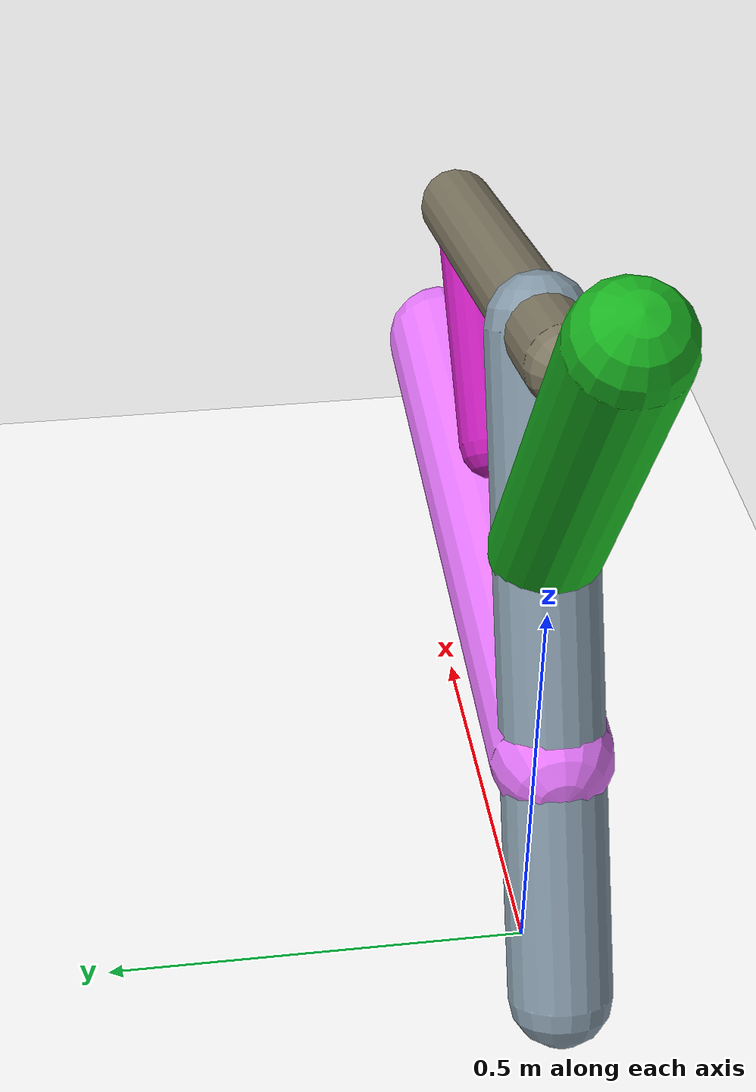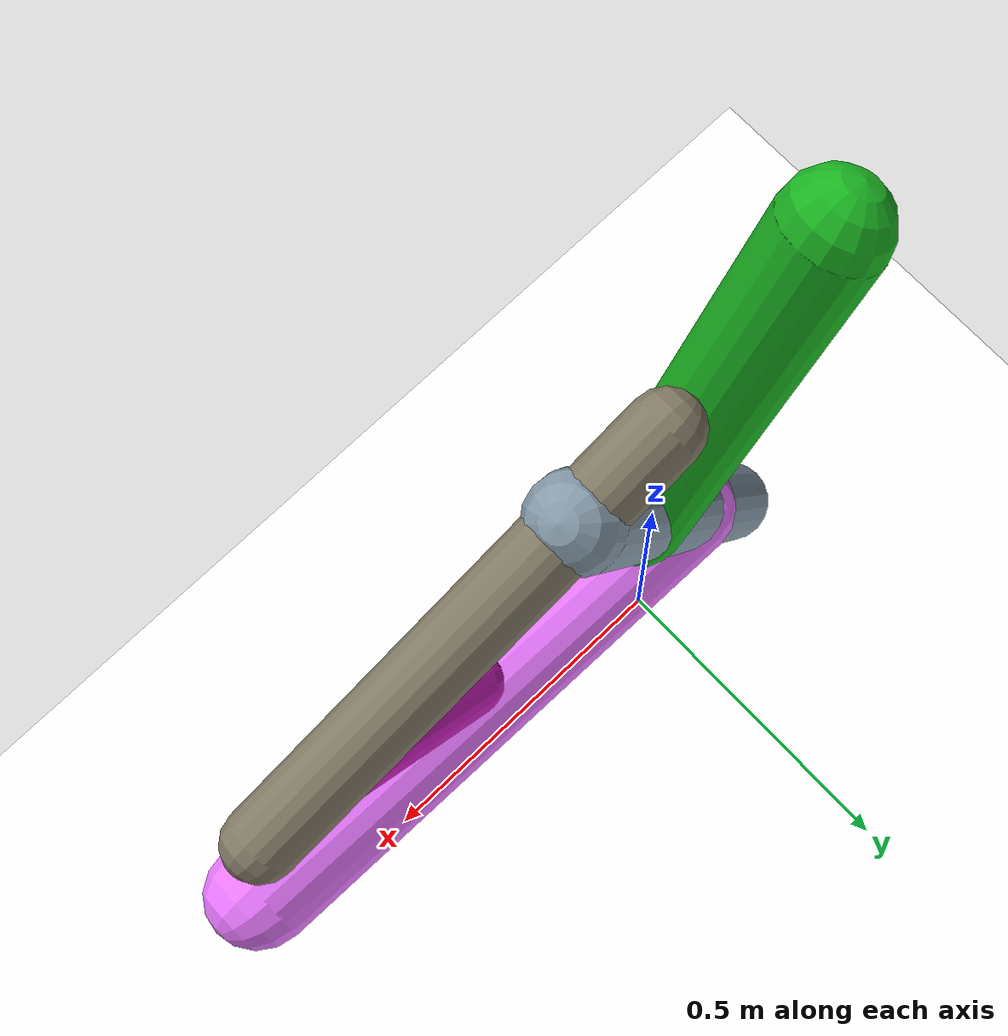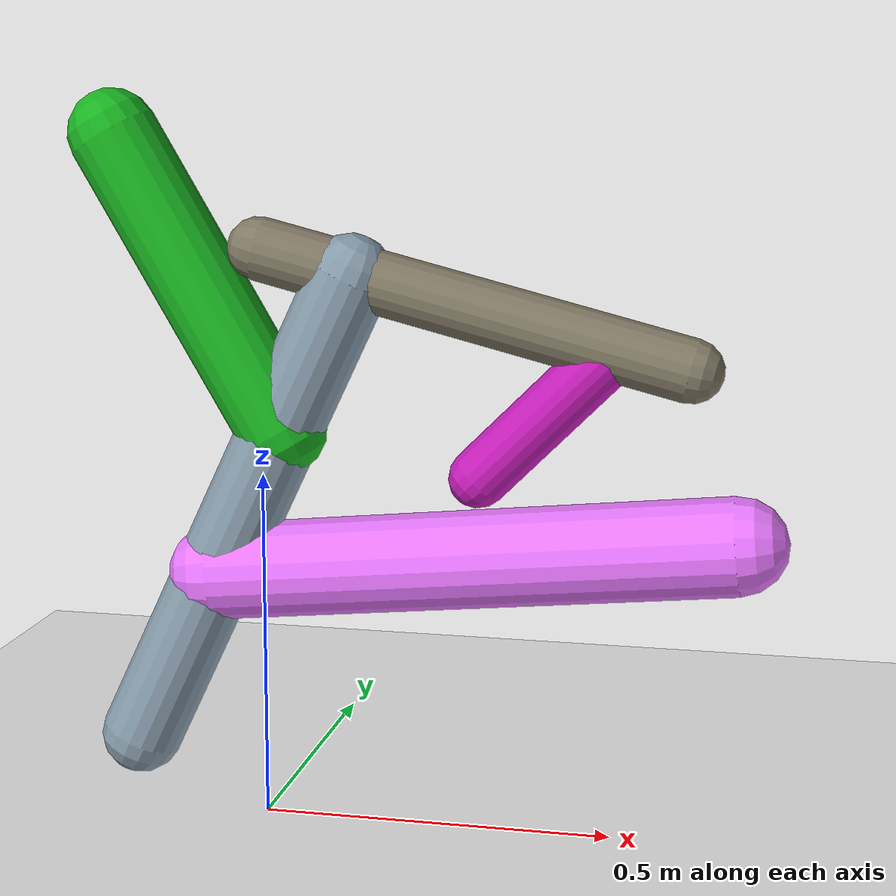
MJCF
<mujoco model="morphology">
  <option timestep="0.01"/>
  <default>
    <default class="/"/>
  </default>
  <asset>
    <texture name="texplane" type="2d" builtin="checker" rgb1="0.1 0.2 0.3" rgb2="0.2 0.3 0.4" width="300" height="300"/>
    <material name="MatPlane" class="/" texture="texplane" texrepeat="20 20" specular="1" shininess="1" reflectance="0.5"/>
  </asset>
  <worldbody>
    <light name="//unnamed_light_0" class="/" directional="true" pos="0 0 1.5" dir="0 0 -1.3" cutoff="1e+02" exponent="1" diffuse="1 1 1" specular="0.1 0.1 0.1"/>
    <geom name="ground" class="/" type="plane" size="15 15 0.5" material="MatPlane" rgba="1 1 1 1"/>
    <body name="body" pos="0 0 0.82">
      <geom name="geom0" class="/" type="capsule" contype="1" conaffinity="1" condim="3" size="0.045" rgba="0.5 0.47 0.39 1" friction="0.4 0.1 0.1" fromto="0 0 0 0.6 0 -0.15"/>
      <body name="body1" pos="0.49 0 -0.13">
        <geom name="geom1" class="/" type="capsule" contype="1" conaffinity="1" condim="3" size="0.042" rgba="0.77 0.11 0.72 1" friction="0.4 0.1 0.1" fromto="0 0 0 -0.18 0 -0.18"/>
        <joint name="joint1" class="/" type="hinge" axis="0 1 0" limited="true" stiffness="20" range="-55 55" armature="0.1" damping="2"/>
      </body>
      <body name="body2" pos="0.13 0 -0.034">
        <geom name="geom2" class="/" type="capsule" contype="1" conaffinity="1" condim="3" size="0.059" rgba="0.52 0.6 0.66 1" friction="0.4 0.1 0.1" fromto="0 0 0 -0.32 0 -0.68"/>
        <body name="body3" pos="-0.2 0 -0.43">
          <geom name="geom3" class="/" type="capsule" contype="1" conaffinity="1" condim="3" size="0.069" rgba="0.91 0.47 1 1" friction="0.4 0.1 0.1" fromto="0 0 0 0.74 0 0.076"/>
          <joint name="joint3" class="/" type="hinge" axis="0 1 0" limited="true" stiffness="20" range="-45 45" armature="0.1" damping="2"/>
        </body>
        <body name="body4" pos="-0.1 0 -0.22">
          <geom name="geom4" class="/" type="capsule" contype="1" conaffinity="1" condim="3" size="0.063" rgba="0.1 0.7 0.13 1" friction="0.4 0.1 0.1" fromto="0 0 0 -0.24 0 0.41"/>
          <joint name="joint4" class="/" type="hinge" axis="0 1 0" limited="true" stiffness="20" range="-31 31" armature="0.1" damping="2"/>
        </body>
        <joint name="joint2" class="/" type="hinge" axis="0 1 0" limited="true" stiffness="20" range="-30 30" armature="0.1" damping="2"/>
      </body>
      <joint name="rootx" class="/" type="slide" axis="1 0 0" limited="false" stiffness="0" armature="0" damping="0"/>
      <joint name="rootz" class="/" type="slide" axis="0 0 1" limited="false" stiffness="0" armature="0" damping="0"/>
      <joint name="rooty" class="/" type="hinge" axis="0 1 0" limited="false" stiffness="0" armature="0" damping="0"/>
    </body>
  </worldbody>
  <actuator>
    <motor name="motor1" class="/" ctrllimited="true" ctrlrange="-1 1" gear="1.6e+02" joint="joint1"/>
    <motor name="motor3" class="/" ctrllimited="true" ctrlrange="-1 1" gear="1.8e+02" joint="joint3"/>
    <motor name="motor4" class="/" ctrllimited="true" ctrlrange="-1 1" gear="1.8e+02" joint="joint4"/>
    <motor name="motor2" class="/" ctrllimited="true" ctrlrange="-1 1" gear="1.5e+02" joint="joint2"/>
  </actuator>
  <sensor>
    <subtreelinvel name="velocity" body="body"/>
  </sensor>
</mujoco>
